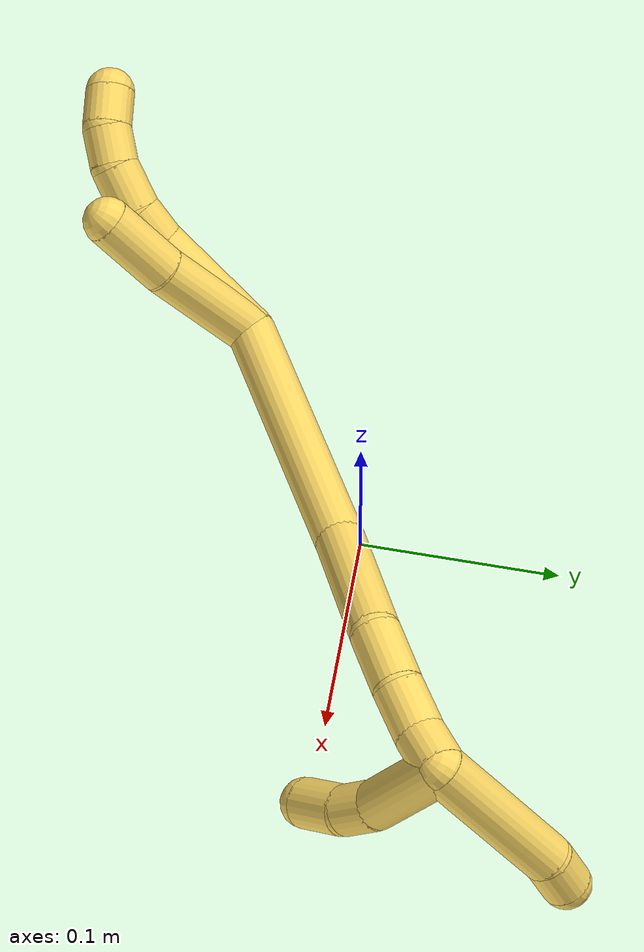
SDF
<sdf version="1.7">
 <world name="default">
  <model name="5">
   <static>0</static>
   <link name="5">
    <collision name="collision-cylinder-e_1_2_8">
     <pose>-0.006985 -0.006881 0.030812 0.219703 -0.217752 -0.024111</pose>
     <geometry><cylinder><radius>0.0125</radius><length>0.064669</length></cylinder></geometry>
     <surface>
      <friction><ode><mu>1.16</mu><mu2>1.16</mu2><slip1>0</slip1><slip2>0</slip2></ode></friction>
      <contact><ode><kp>1e+06</kp><kd>1</kd><max_vel>0</max_vel><min_depth>0.001</min_depth></ode></contact>
     </surface>
    </collision>
    <visual name="visual-cylinder-e_1_2_8">
     <pose>-0.006985 -0.006881 0.030812 0.219703 -0.217752 -0.024111</pose>
     <geometry><cylinder><radius>0.0125</radius><length>0.064669</length></cylinder></geometry>
     <material><ambient>1 0.858824 0.4 1</ambient></material>
    </visual>
    <collision name="collision-cylinder-e_2_8_9">
     <pose>-0.017206 -0.014574 0.071229 0.084379 -0.323856 -0.013792</pose>
     <geometry><cylinder><radius>0.0125</radius><length>0.020334</length></cylinder></geometry>
     <surface>
      <friction><ode><mu>1.16</mu><mu2>1.16</mu2><slip1>0</slip1><slip2>0</slip2></ode></friction>
      <contact><ode><kp>1e+06</kp><kd>1</kd><max_vel>0</max_vel><min_depth>0.001</min_depth></ode></contact>
     </surface>
    </collision>
    <visual name="visual-cylinder-e_2_8_9">
     <pose>-0.017206 -0.014574 0.071229 0.084379 -0.323856 -0.013792</pose>
     <geometry><cylinder><radius>0.0125</radius><length>0.020334</length></cylinder></geometry>
     <material><ambient>1 0.858824 0.4 1</ambient></material>
    </visual>
    <collision name="collision-cylinder-e_3_9_10">
     <pose>-0.02714 -0.017446 0.090984 0.200219 -0.574023 -0.059278</pose>
     <geometry><cylinder><radius>0.0125</radius><length>0.02467</length></cylinder></geometry>
     <surface>
      <friction><ode><mu>1.16</mu><mu2>1.16</mu2><slip1>0</slip1><slip2>0</slip2></ode></friction>
      <contact><ode><kp>1e+06</kp><kd>1</kd><max_vel>0</max_vel><min_depth>0.001</min_depth></ode></contact>
     </surface>
    </collision>
    <visual name="visual-cylinder-e_3_9_10">
     <pose>-0.02714 -0.017446 0.090984 0.200219 -0.574023 -0.059278</pose>
     <geometry><cylinder><radius>0.0125</radius><length>0.02467</length></cylinder></geometry>
     <material><ambient>1 0.858824 0.4 1</ambient></material>
    </visual>
    <collision name="collision-cylinder-e_4_10_11">
     <pose>-0.041474 -0.021677 0.107303 0.338448 -0.862599 -0.156933</pose>
     <geometry><cylinder><radius>0.0125</radius><length>0.020107</length></cylinder></geometry>
     <surface>
      <friction><ode><mu>1.16</mu><mu2>1.16</mu2><slip1>0</slip1><slip2>0</slip2></ode></friction>
      <contact><ode><kp>1e+06</kp><kd>1</kd><max_vel>0</max_vel><min_depth>0.001</min_depth></ode></contact>
     </surface>
    </collision>
    <visual name="visual-cylinder-e_4_10_11">
     <pose>-0.041474 -0.021677 0.107303 0.338448 -0.862599 -0.156933</pose>
     <geometry><cylinder><radius>0.0125</radius><length>0.020107</length></cylinder></geometry>
     <material><ambient>1 0.858824 0.4 1</ambient></material>
    </visual>
    <collision name="collision-cylinder-e_5_11_6">
     <pose>-0.058306 -0.026551 0.116687 0.699121 -1.14238 -0.460232</pose>
     <geometry><cylinder><radius>0.0125</radius><length>0.02022</length></cylinder></geometry>
     <surface>
      <friction><ode><mu>1.16</mu><mu2>1.16</mu2><slip1>0</slip1><slip2>0</slip2></ode></friction>
      <contact><ode><kp>1e+06</kp><kd>1</kd><max_vel>0</max_vel><min_depth>0.001</min_depth></ode></contact>
     </surface>
    </collision>
    <visual name="visual-cylinder-e_5_11_6">
     <pose>-0.058306 -0.026551 0.116687 0.699121 -1.14238 -0.460232</pose>
     <geometry><cylinder><radius>0.0125</radius><length>0.02022</length></cylinder></geometry>
     <material><ambient>1 0.858824 0.4 1</ambient></material>
    </visual>
    <collision name="collision-cylinder-e_1_2_12">
     <pose>0.001124 0.002676 0.030019 -0.088916 0.037265 -0.001658</pose>
     <geometry><cylinder><radius>0.0125</radius><length>0.060318</length></cylinder></geometry>
     <surface>
      <friction><ode><mu>1.16</mu><mu2>1.16</mu2><slip1>0</slip1><slip2>0</slip2></ode></friction>
      <contact><ode><kp>1e+06</kp><kd>1</kd><max_vel>0</max_vel><min_depth>0.001</min_depth></ode></contact>
     </surface>
    </collision>
    <visual name="visual-cylinder-e_1_2_12">
     <pose>0.001124 0.002676 0.030019 -0.088916 0.037265 -0.001658</pose>
     <geometry><cylinder><radius>0.0125</radius><length>0.060318</length></cylinder></geometry>
     <material><ambient>1 0.858824 0.4 1</ambient></material>
    </visual>
    <collision name="collision-cylinder-e_2_12_5">
     <pose>0.000675 0.006014 0.079805 -0.033453 -0.079305 0.001327</pose>
     <geometry><cylinder><radius>0.0125</radius><length>0.039682</length></cylinder></geometry>
     <surface>
      <friction><ode><mu>1.16</mu><mu2>1.16</mu2><slip1>0</slip1><slip2>0</slip2></ode></friction>
      <contact><ode><kp>1e+06</kp><kd>1</kd><max_vel>0</max_vel><min_depth>0.001</min_depth></ode></contact>
     </surface>
    </collision>
    <visual name="visual-cylinder-e_2_12_5">
     <pose>0.000675 0.006014 0.079805 -0.033453 -0.079305 0.001327</pose>
     <geometry><cylinder><radius>0.0125</radius><length>0.039682</length></cylinder></geometry>
     <material><ambient>1 0.858824 0.4 1</ambient></material>
    </visual>
    <collision name="collision-cylinder-e_1_2_13">
     <pose>0.045282 0.053737 -0.024639 -2.00071 0.653644 -0.972123</pose>
     <geometry><cylinder><radius>0.0125</radius><length>0.148932</length></cylinder></geometry>
     <surface>
      <friction><ode><mu>1.16</mu><mu2>1.16</mu2><slip1>0</slip1><slip2>0</slip2></ode></friction>
      <contact><ode><kp>1e+06</kp><kd>1</kd><max_vel>0</max_vel><min_depth>0.001</min_depth></ode></contact>
     </surface>
    </collision>
    <visual name="visual-cylinder-e_1_2_13">
     <pose>0.045282 0.053737 -0.024639 -2.00071 0.653644 -0.972123</pose>
     <geometry><cylinder><radius>0.0125</radius><length>0.148932</length></cylinder></geometry>
     <material><ambient>1 0.858824 0.4 1</ambient></material>
    </visual>
    <collision name="collision-cylinder-e_2_13_14">
     <pose>0.111135 0.135926 -0.054956 -1.76776 0.616776 -0.740932</pose>
     <geometry><cylinder><radius>0.0125</radius><length>0.071131</length></cylinder></geometry>
     <surface>
      <friction><ode><mu>1.16</mu><mu2>1.16</mu2><slip1>0</slip1><slip2>0</slip2></ode></friction>
      <contact><ode><kp>1e+06</kp><kd>1</kd><max_vel>0</max_vel><min_depth>0.001</min_depth></ode></contact>
     </surface>
    </collision>
    <visual name="visual-cylinder-e_2_13_14">
     <pose>0.111135 0.135926 -0.054956 -1.76776 0.616776 -0.740932</pose>
     <geometry><cylinder><radius>0.0125</radius><length>0.071131</length></cylinder></geometry>
     <material><ambient>1 0.858824 0.4 1</ambient></material>
    </visual>
    <collision name="collision-cylinder-e_3_14_15">
     <pose>0.141728 0.174751 -0.067257 -2.13896 0.683408 -1.15133</pose>
     <geometry><cylinder><radius>0.0125</radius><length>0.031745</length></cylinder></geometry>
     <surface>
      <friction><ode><mu>1.16</mu><mu2>1.16</mu2><slip1>0</slip1><slip2>0</slip2></ode></friction>
      <contact><ode><kp>1e+06</kp><kd>1</kd><max_vel>0</max_vel><min_depth>0.001</min_depth></ode></contact>
     </surface>
    </collision>
    <visual name="visual-cylinder-e_3_14_15">
     <pose>0.141728 0.174751 -0.067257 -2.13896 0.683408 -1.15133</pose>
     <geometry><cylinder><radius>0.0125</radius><length>0.031745</length></cylinder></geometry>
     <material><ambient>1 0.858824 0.4 1</ambient></material>
    </visual>
    <collision name="collision-cylinder-e_4_15_16">
     <pose>0.159716 0.191841 -0.081518 -2.42037 0.664364 -1.48185</pose>
     <geometry><cylinder><radius>0.0125</radius><length>0.025838</length></cylinder></geometry>
     <surface>
      <friction><ode><mu>1.16</mu><mu2>1.16</mu2><slip1>0</slip1><slip2>0</slip2></ode></friction>
      <contact><ode><kp>1e+06</kp><kd>1</kd><max_vel>0</max_vel><min_depth>0.001</min_depth></ode></contact>
     </surface>
    </collision>
    <visual name="visual-cylinder-e_4_15_16">
     <pose>0.159716 0.191841 -0.081518 -2.42037 0.664364 -1.48185</pose>
     <geometry><cylinder><radius>0.0125</radius><length>0.025838</length></cylinder></geometry>
     <material><ambient>1 0.858824 0.4 1</ambient></material>
    </visual>
    <collision name="collision-cylinder-e_5_16_1">
     <pose>0.173414 0.207099 -0.093528 -2.04385 0.538558 -0.847835</pose>
     <geometry><cylinder><radius>0.0125</radius><length>0.022354</length></cylinder></geometry>
     <surface>
      <friction><ode><mu>1.16</mu><mu2>1.16</mu2><slip1>0</slip1><slip2>0</slip2></ode></friction>
      <contact><ode><kp>1e+06</kp><kd>1</kd><max_vel>0</max_vel><min_depth>0.001</min_depth></ode></contact>
     </surface>
    </collision>
    <visual name="visual-cylinder-e_5_16_1">
     <pose>0.173414 0.207099 -0.093528 -2.04385 0.538558 -0.847835</pose>
     <geometry><cylinder><radius>0.0125</radius><length>0.022354</length></cylinder></geometry>
     <material><ambient>1 0.858824 0.4 1</ambient></material>
    </visual>
    <collision name="collision-cylinder-e_1_1_17">
     <pose>0.18179 0.211268 -0.137065 3.03042 0.066973 1.08383</pose>
     <geometry><cylinder><radius>0.0125</radius><length>0.078994</length></cylinder></geometry>
     <surface>
      <friction><ode><mu>1.16</mu><mu2>1.16</mu2><slip1>0</slip1><slip2>0</slip2></ode></friction>
      <contact><ode><kp>1e+06</kp><kd>1</kd><max_vel>0</max_vel><min_depth>0.001</min_depth></ode></contact>
     </surface>
    </collision>
    <visual name="visual-cylinder-e_1_1_17">
     <pose>0.18179 0.211268 -0.137065 3.03042 0.066973 1.08383</pose>
     <geometry><cylinder><radius>0.0125</radius><length>0.078994</length></cylinder></geometry>
     <material><ambient>1 0.858824 0.4 1</ambient></material>
    </visual>
    <collision name="collision-cylinder-e_2_17_4">
     <pose>0.186213 0.203348 -0.185954 2.79171 0.170305 0.899813</pose>
     <geometry><cylinder><radius>0.0125</radius><length>0.021006</length></cylinder></geometry>
     <surface>
      <friction><ode><mu>1.16</mu><mu2>1.16</mu2><slip1>0</slip1><slip2>0</slip2></ode></friction>
      <contact><ode><kp>1e+06</kp><kd>1</kd><max_vel>0</max_vel><min_depth>0.001</min_depth></ode></contact>
     </surface>
    </collision>
    <visual name="visual-cylinder-e_2_17_4">
     <pose>0.186213 0.203348 -0.185954 2.79171 0.170305 0.899813</pose>
     <geometry><cylinder><radius>0.0125</radius><length>0.021006</length></cylinder></geometry>
     <material><ambient>1 0.858824 0.4 1</ambient></material>
    </visual>
    <collision name="collision-cylinder-e_1_1_18">
     <pose>0.190078 0.191811 -0.100309 1.67158 0.428179 0.47207</pose>
     <geometry><cylinder><radius>0.0125</radius><length>0.052654</length></cylinder></geometry>
     <surface>
      <friction><ode><mu>1.16</mu><mu2>1.16</mu2><slip1>0</slip1><slip2>0</slip2></ode></friction>
      <contact><ode><kp>1e+06</kp><kd>1</kd><max_vel>0</max_vel><min_depth>0.001</min_depth></ode></contact>
     </surface>
    </collision>
    <visual name="visual-cylinder-e_1_1_18">
     <pose>0.190078 0.191811 -0.100309 1.67158 0.428179 0.47207</pose>
     <geometry><cylinder><radius>0.0125</radius><length>0.052654</length></cylinder></geometry>
     <material><ambient>1 0.858824 0.4 1</ambient></material>
    </visual>
    <collision name="collision-cylinder-e_2_18_19">
     <pose>0.204636 0.15873 -0.100797 1.36599 0.36643 0.299266</pose>
     <geometry><cylinder><radius>0.0125</radius><length>0.020245</length></cylinder></geometry>
     <surface>
      <friction><ode><mu>1.16</mu><mu2>1.16</mu2><slip1>0</slip1><slip2>0</slip2></ode></friction>
      <contact><ode><kp>1e+06</kp><kd>1</kd><max_vel>0</max_vel><min_depth>0.001</min_depth></ode></contact>
     </surface>
    </collision>
    <visual name="visual-cylinder-e_2_18_19">
     <pose>0.204636 0.15873 -0.100797 1.36599 0.36643 0.299266</pose>
     <geometry><cylinder><radius>0.0125</radius><length>0.020245</length></cylinder></geometry>
     <material><ambient>1 0.858824 0.4 1</ambient></material>
    </visual>
    <collision name="collision-cylinder-e_3_19_3">
     <pose>0.209331 0.136325 -0.095792 1.34057 0.078902 0.062559</pose>
     <geometry><cylinder><radius>0.0125</radius><length>0.027101</length></cylinder></geometry>
     <surface>
      <friction><ode><mu>1.16</mu><mu2>1.16</mu2><slip1>0</slip1><slip2>0</slip2></ode></friction>
      <contact><ode><kp>1e+06</kp><kd>1</kd><max_vel>0</max_vel><min_depth>0.001</min_depth></ode></contact>
     </surface>
    </collision>
    <visual name="visual-cylinder-e_3_19_3">
     <pose>0.209331 0.136325 -0.095792 1.34057 0.078902 0.062559</pose>
     <geometry><cylinder><radius>0.0125</radius><length>0.027101</length></cylinder></geometry>
     <material><ambient>1 0.858824 0.4 1</ambient></material>
    </visual>
    <collision name="collision-sphere-3">
     <pose>0.210399 0.123173 -0.09271 0 -0 0</pose>
     <geometry><sphere><radius>0.0125</radius></sphere></geometry>
     <surface>
      <friction><ode><mu>1.16</mu><mu2>1.16</mu2><slip1>0</slip1><slip2>0</slip2></ode></friction>
      <contact><ode><kp>1e+06</kp><kd>1</kd><max_vel>0</max_vel><min_depth>0.001</min_depth></ode></contact>
     </surface>
    </collision>
    <visual name="visual-sphere-3">
     <pose>0.210399 0.123173 -0.09271 0 -0 0</pose>
     <geometry><sphere><radius>0.0125</radius></sphere></geometry>
     <material><ambient>1 0.858824 0.4 1</ambient></material>
    </visual>
    <collision name="collision-sphere-19">
     <pose>0.208263 0.149476 -0.098875 0 -0 0</pose>
     <geometry><sphere><radius>0.0125</radius></sphere></geometry>
     <surface>
      <friction><ode><mu>1.16</mu><mu2>1.16</mu2><slip1>0</slip1><slip2>0</slip2></ode></friction>
      <contact><ode><kp>1e+06</kp><kd>1</kd><max_vel>0</max_vel><min_depth>0.001</min_depth></ode></contact>
     </surface>
    </collision>
    <visual name="visual-sphere-19">
     <pose>0.208263 0.149476 -0.098875 0 -0 0</pose>
     <geometry><sphere><radius>0.0125</radius></sphere></geometry>
     <material><ambient>1 0.858824 0.4 1</ambient></material>
    </visual>
    <collision name="collision-sphere-6">
     <pose>-0.067502 -0.029254 0.119901 0 -0 0</pose>
     <geometry><sphere><radius>0.0125</radius></sphere></geometry>
     <surface>
      <friction><ode><mu>1.16</mu><mu2>1.16</mu2><slip1>0</slip1><slip2>0</slip2></ode></friction>
      <contact><ode><kp>1e+06</kp><kd>1</kd><max_vel>0</max_vel><min_depth>0.001</min_depth></ode></contact>
     </surface>
    </collision>
    <visual name="visual-sphere-6">
     <pose>-0.067502 -0.029254 0.119901 0 -0 0</pose>
     <geometry><sphere><radius>0.0125</radius></sphere></geometry>
     <material><ambient>1 0.858824 0.4 1</ambient></material>
    </visual>
    <collision name="collision-sphere-11">
     <pose>-0.04911 -0.023848 0.113472 0 -0 0</pose>
     <geometry><sphere><radius>0.0125</radius></sphere></geometry>
     <surface>
      <friction><ode><mu>1.16</mu><mu2>1.16</mu2><slip1>0</slip1><slip2>0</slip2></ode></friction>
      <contact><ode><kp>1e+06</kp><kd>1</kd><max_vel>0</max_vel><min_depth>0.001</min_depth></ode></contact>
     </surface>
    </collision>
    <visual name="visual-sphere-11">
     <pose>-0.04911 -0.023848 0.113472 0 -0 0</pose>
     <geometry><sphere><radius>0.0125</radius></sphere></geometry>
     <material><ambient>1 0.858824 0.4 1</ambient></material>
    </visual>
    <collision name="collision-sphere-10">
     <pose>-0.033838 -0.019506 0.101135 0 -0 0</pose>
     <geometry><sphere><radius>0.0125</radius></sphere></geometry>
     <surface>
      <friction><ode><mu>1.16</mu><mu2>1.16</mu2><slip1>0</slip1><slip2>0</slip2></ode></friction>
      <contact><ode><kp>1e+06</kp><kd>1</kd><max_vel>0</max_vel><min_depth>0.001</min_depth></ode></contact>
     </surface>
    </collision>
    <visual name="visual-sphere-10">
     <pose>-0.033838 -0.019506 0.101135 0 -0 0</pose>
     <geometry><sphere><radius>0.0125</radius></sphere></geometry>
     <material><ambient>1 0.858824 0.4 1</ambient></material>
    </visual>
    <collision name="collision-sphere-9">
     <pose>-0.020442 -0.015386 0.080833 0 -0 0</pose>
     <geometry><sphere><radius>0.0125</radius></sphere></geometry>
     <surface>
      <friction><ode><mu>1.16</mu><mu2>1.16</mu2><slip1>0</slip1><slip2>0</slip2></ode></friction>
      <contact><ode><kp>1e+06</kp><kd>1</kd><max_vel>0</max_vel><min_depth>0.001</min_depth></ode></contact>
     </surface>
    </collision>
    <visual name="visual-sphere-9">
     <pose>-0.020442 -0.015386 0.080833 0 -0 0</pose>
     <geometry><sphere><radius>0.0125</radius></sphere></geometry>
     <material><ambient>1 0.858824 0.4 1</ambient></material>
    </visual>
    <collision name="collision-sphere-2">
     <geometry><sphere><radius>0.0125</radius></sphere></geometry>
     <surface>
      <friction><ode><mu>1.16</mu><mu2>1.16</mu2><slip1>0</slip1><slip2>0</slip2></ode></friction>
      <contact><ode><kp>1e+06</kp><kd>1</kd><max_vel>0</max_vel><min_depth>0.001</min_depth></ode></contact>
     </surface>
    </collision>
    <visual name="visual-sphere-2">
     <geometry><sphere><radius>0.0125</radius></sphere></geometry>
     <material><ambient>1 0.858824 0.4 1</ambient></material>
    </visual>
    <collision name="collision-sphere-8">
     <pose>-0.013971 -0.013761 0.061624 0 -0 0</pose>
     <geometry><sphere><radius>0.0125</radius></sphere></geometry>
     <surface>
      <friction><ode><mu>1.16</mu><mu2>1.16</mu2><slip1>0</slip1><slip2>0</slip2></ode></friction>
      <contact><ode><kp>1e+06</kp><kd>1</kd><max_vel>0</max_vel><min_depth>0.001</min_depth></ode></contact>
     </surface>
    </collision>
    <visual name="visual-sphere-8">
     <pose>-0.013971 -0.013761 0.061624 0 -0 0</pose>
     <geometry><sphere><radius>0.0125</radius></sphere></geometry>
     <material><ambient>1 0.858824 0.4 1</ambient></material>
    </visual>
    <collision name="collision-sphere-12">
     <pose>0.002247 0.005352 0.060038 0 -0 0</pose>
     <geometry><sphere><radius>0.0125</radius></sphere></geometry>
     <surface>
      <friction><ode><mu>1.16</mu><mu2>1.16</mu2><slip1>0</slip1><slip2>0</slip2></ode></friction>
      <contact><ode><kp>1e+06</kp><kd>1</kd><max_vel>0</max_vel><min_depth>0.001</min_depth></ode></contact>
     </surface>
    </collision>
    <visual name="visual-sphere-12">
     <pose>0.002247 0.005352 0.060038 0 -0 0</pose>
     <geometry><sphere><radius>0.0125</radius></sphere></geometry>
     <material><ambient>1 0.858824 0.4 1</ambient></material>
    </visual>
    <collision name="collision-sphere-5">
     <pose>-0.000896 0.006676 0.099573 0 -0 0</pose>
     <geometry><sphere><radius>0.0125</radius></sphere></geometry>
     <surface>
      <friction><ode><mu>1.16</mu><mu2>1.16</mu2><slip1>0</slip1><slip2>0</slip2></ode></friction>
      <contact><ode><kp>1e+06</kp><kd>1</kd><max_vel>0</max_vel><min_depth>0.001</min_depth></ode></contact>
     </surface>
    </collision>
    <visual name="visual-sphere-5">
     <pose>-0.000896 0.006676 0.099573 0 -0 0</pose>
     <geometry><sphere><radius>0.0125</radius></sphere></geometry>
     <material><ambient>1 0.858824 0.4 1</ambient></material>
    </visual>
    <collision name="collision-sphere-13">
     <pose>0.090563 0.107474 -0.049279 0 -0 0</pose>
     <geometry><sphere><radius>0.0125</radius></sphere></geometry>
     <surface>
      <friction><ode><mu>1.16</mu><mu2>1.16</mu2><slip1>0</slip1><slip2>0</slip2></ode></friction>
      <contact><ode><kp>1e+06</kp><kd>1</kd><max_vel>0</max_vel><min_depth>0.001</min_depth></ode></contact>
     </surface>
    </collision>
    <visual name="visual-sphere-13">
     <pose>0.090563 0.107474 -0.049279 0 -0 0</pose>
     <geometry><sphere><radius>0.0125</radius></sphere></geometry>
     <material><ambient>1 0.858824 0.4 1</ambient></material>
    </visual>
    <collision name="collision-sphere-14">
     <pose>0.131706 0.164377 -0.060634 0 -0 0</pose>
     <geometry><sphere><radius>0.0125</radius></sphere></geometry>
     <surface>
      <friction><ode><mu>1.16</mu><mu2>1.16</mu2><slip1>0</slip1><slip2>0</slip2></ode></friction>
      <contact><ode><kp>1e+06</kp><kd>1</kd><max_vel>0</max_vel><min_depth>0.001</min_depth></ode></contact>
     </surface>
    </collision>
    <visual name="visual-sphere-14">
     <pose>0.131706 0.164377 -0.060634 0 -0 0</pose>
     <geometry><sphere><radius>0.0125</radius></sphere></geometry>
     <material><ambient>1 0.858824 0.4 1</ambient></material>
    </visual>
    <collision name="collision-sphere-15">
     <pose>0.151751 0.185125 -0.073879 0 -0 0</pose>
     <geometry><sphere><radius>0.0125</radius></sphere></geometry>
     <surface>
      <friction><ode><mu>1.16</mu><mu2>1.16</mu2><slip1>0</slip1><slip2>0</slip2></ode></friction>
      <contact><ode><kp>1e+06</kp><kd>1</kd><max_vel>0</max_vel><min_depth>0.001</min_depth></ode></contact>
     </surface>
    </collision>
    <visual name="visual-sphere-15">
     <pose>0.151751 0.185125 -0.073879 0 -0 0</pose>
     <geometry><sphere><radius>0.0125</radius></sphere></geometry>
     <material><ambient>1 0.858824 0.4 1</ambient></material>
    </visual>
    <collision name="collision-sphere-16">
     <pose>0.167681 0.198557 -0.089156 0 -0 0</pose>
     <geometry><sphere><radius>0.0125</radius></sphere></geometry>
     <surface>
      <friction><ode><mu>1.16</mu><mu2>1.16</mu2><slip1>0</slip1><slip2>0</slip2></ode></friction>
      <contact><ode><kp>1e+06</kp><kd>1</kd><max_vel>0</max_vel><min_depth>0.001</min_depth></ode></contact>
     </surface>
    </collision>
    <visual name="visual-sphere-16">
     <pose>0.167681 0.198557 -0.089156 0 -0 0</pose>
     <geometry><sphere><radius>0.0125</radius></sphere></geometry>
     <material><ambient>1 0.858824 0.4 1</ambient></material>
    </visual>
    <collision name="collision-sphere-1">
     <pose>0.179147 0.21564 -0.0979 0 -0 0</pose>
     <geometry><sphere><radius>0.0125</radius></sphere></geometry>
     <surface>
      <friction><ode><mu>1.16</mu><mu2>1.16</mu2><slip1>0</slip1><slip2>0</slip2></ode></friction>
      <contact><ode><kp>1e+06</kp><kd>1</kd><max_vel>0</max_vel><min_depth>0.001</min_depth></ode></contact>
     </surface>
    </collision>
    <visual name="visual-sphere-1">
     <pose>0.179147 0.21564 -0.0979 0 -0 0</pose>
     <geometry><sphere><radius>0.0125</radius></sphere></geometry>
     <material><ambient>1 0.858824 0.4 1</ambient></material>
    </visual>
    <collision name="collision-sphere-18">
     <pose>0.20101 0.167983 -0.102719 0 -0 0</pose>
     <geometry><sphere><radius>0.0125</radius></sphere></geometry>
     <surface>
      <friction><ode><mu>1.16</mu><mu2>1.16</mu2><slip1>0</slip1><slip2>0</slip2></ode></friction>
      <contact><ode><kp>1e+06</kp><kd>1</kd><max_vel>0</max_vel><min_depth>0.001</min_depth></ode></contact>
     </surface>
    </collision>
    <visual name="visual-sphere-18">
     <pose>0.20101 0.167983 -0.102719 0 -0 0</pose>
     <geometry><sphere><radius>0.0125</radius></sphere></geometry>
     <material><ambient>1 0.858824 0.4 1</ambient></material>
    </visual>
    <collision name="collision-sphere-17">
     <pose>0.184433 0.206896 -0.17623 0 -0 0</pose>
     <geometry><sphere><radius>0.0125</radius></sphere></geometry>
     <surface>
      <friction><ode><mu>1.16</mu><mu2>1.16</mu2><slip1>0</slip1><slip2>0</slip2></ode></friction>
      <contact><ode><kp>1e+06</kp><kd>1</kd><max_vel>0</max_vel><min_depth>0.001</min_depth></ode></contact>
     </surface>
    </collision>
    <visual name="visual-sphere-17">
     <pose>0.184433 0.206896 -0.17623 0 -0 0</pose>
     <geometry><sphere><radius>0.0125</radius></sphere></geometry>
     <material><ambient>1 0.858824 0.4 1</ambient></material>
    </visual>
    <collision name="collision-sphere-4">
     <pose>0.187993 0.1998 -0.195678 0 -0 0</pose>
     <geometry><sphere><radius>0.0125</radius></sphere></geometry>
     <surface>
      <friction><ode><mu>1.16</mu><mu2>1.16</mu2><slip1>0</slip1><slip2>0</slip2></ode></friction>
      <contact><ode><kp>1e+06</kp><kd>1</kd><max_vel>0</max_vel><min_depth>0.001</min_depth></ode></contact>
     </surface>
    </collision>
    <visual name="visual-sphere-4">
     <pose>0.187993 0.1998 -0.195678 0 -0 0</pose>
     <geometry><sphere><radius>0.0125</radius></sphere></geometry>
     <material><ambient>1 0.858824 0.4 1</ambient></material>
    </visual>
    <inertial>
     <pose>0.082478 0.092039 -0.031177 0 -0 0</pose>
     <mass>0.75</mass>
     <inertia>
      <ixx>9.1e-05</ixx>
      <ixy>0</ixy>
      <ixz>0</ixz>
      <iyy>-4.4e-05</iyy>
      <iyz>0</iyz>
      <izz>-0.000401</izz>
     </inertia>
    </inertial>
   </link>
   <pose>-0.104442 -0.074472 0.01149 0.899882 0.182545 -0.324282</pose>
  </model>
 </world>
</sdf>
